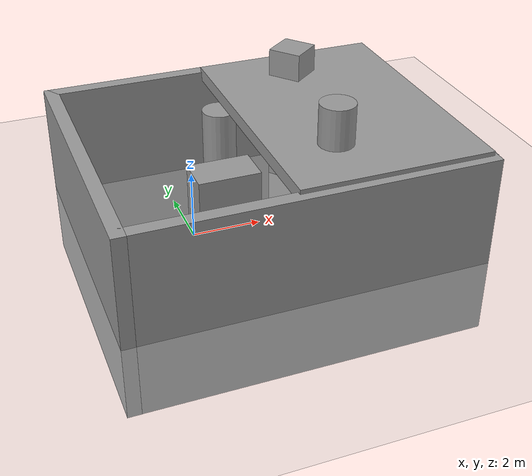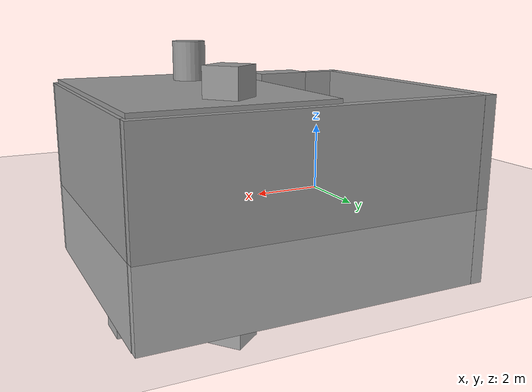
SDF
<sdf version="1.6">
 <world name="default">
  <model name="ground_plane">
   <static>1</static>
   <link name="link">
    <collision name="collision">
     <geometry><plane><normal>0 0 1</normal><size>100 100</size></plane></geometry>
     <surface><friction><ode><mu>100</mu><mu2>50</mu2></ode></friction></surface>
    </collision>
    <visual name="visual">
     <cast_shadows>0</cast_shadows>
     <geometry><plane><normal>0 0 1</normal><size>100 100</size></plane></geometry>
     <material>
      <script><uri>file://media/materials/scripts/gazebo.material</uri><name>Gazebo/Grey</name></script>
     </material>
    </visual>
   </link>
  </model>
  <light name="sun" type="directional">
   <pose>0 0 10 0 -0 0</pose>
   <diffuse>0.8 0.8 0.8 1</diffuse>
   <specular>0.2 0.2 0.2 1</specular>
   <attenuation>
    <range>1000</range>
    <constant>0.9</constant>
    <linear>0.01</linear>
    <quadratic>0.001</quadratic>
   </attenuation>
   <direction>-0.5 0.1 -0.9</direction>
  </light>
  <gravity>0 0 -9.8</gravity>
  <magnetic_field>6e-06 2.3e-05 -4.2e-05</magnetic_field>
  <atmosphere type="adiabatic"/>
  <physics name="default_physics" default="0" type="ode">
   <max_step_size>0.001</max_step_size>
   <real_time_factor>1</real_time_factor>
   <real_time_update_rate>1000</real_time_update_rate>
  </physics>
  <scene><ambient>0.4 0.4 0.4 1</ambient><background>0.7 0.7 0.7 1</background><shadows>1</shadows></scene>
  <spherical_coordinates>
   <surface_model>EARTH_WGS84</surface_model>
   <latitude_deg>0</latitude_deg>
   <longitude_deg>0</longitude_deg>
   <elevation>0</elevation>
   <heading_deg>0</heading_deg>
  </spherical_coordinates>
  <model name="unit_cylinder">
   <static>1</static>
   <pose>1.47402 1.89613 0.5 0 -0 0</pose>
   <link name="link">
    <inertial>
     <mass>1</mass>
     <inertia><ixx>0.145833</ixx><ixy>0</ixy><ixz>0</ixz><iyy>0.145833</iyy><iyz>0</iyz><izz>0.125</izz></inertia>
    </inertial>
    <collision name="collision">
     <geometry><cylinder><radius>0.5</radius><length>4.75179</length></cylinder></geometry>
    </collision>
    <visual name="visual">
     <geometry><cylinder><radius>0.5</radius><length>4.75179</length></cylinder></geometry>
     <material>
      <script><name>Gazebo/Grey</name><uri>file://media/materials/scripts/gazebo.material</uri></script>
     </material>
    </visual>
   </link>
  </model>
  <model name="unit_box">
   <static>1</static>
   <pose>0.143671 -2.42399 0.499995 0 1e-05 0</pose>
   <link name="link">
    <inertial>
     <mass>1</mass>
     <inertia>
      <ixx>0.166667</ixx>
      <ixy>0</ixy>
      <ixz>0</ixz>
      <iyy>0.166667</iyy>
      <iyz>0</iyz>
      <izz>0.166667</izz>
     </inertia>
    </inertial>
    <collision name="collision"><geometry><box><size>1.63839 1 5.89724</size></box></geometry></collision>
    <visual name="visual">
     <geometry><box><size>1.63839 1 5.89724</size></box></geometry>
     <material>
      <script><name>Gazebo/Grey</name><uri>file://media/materials/scripts/gazebo.material</uri></script>
     </material>
    </visual>
   </link>
  </model>
  <model name="unit_cylinder_0">
   <static>1</static>
   <pose>3.401 -2.04277 2.27753 0 0 -6.1e-05</pose>
   <link name="link">
    <inertial>
     <mass>1</mass>
     <inertia><ixx>0.145833</ixx><ixy>0</ixy><ixz>0</ixz><iyy>0.145833</iyy><iyz>0</iyz><izz>0.125</izz></inertia>
    </inertial>
    <collision name="collision">
     <geometry><cylinder><radius>0.5</radius><length>4.55506</length></cylinder></geometry>
    </collision>
    <visual name="visual">
     <geometry><cylinder><radius>0.5</radius><length>4.55506</length></cylinder></geometry>
     <material>
      <script><name>Gazebo/Grey</name><uri>file://media/materials/scripts/gazebo.material</uri></script>
     </material>
    </visual>
   </link>
  </model>
  <model name="unit_box_0">
   <static>1</static>
   <pose>6.32589 0.523966 -0.027983 0 -0 0</pose>
   <link name="link">
    <inertial>
     <mass>1</mass>
     <inertia>
      <ixx>0.166667</ixx>
      <ixy>0</ixy>
      <ixz>0</ixz>
      <iyy>0.166667</iyy>
      <iyz>0</iyz>
      <izz>0.166667</izz>
     </inertia>
    </inertial>
    <collision name="collision"><geometry><box><size>1 1 6.56728</size></box></geometry></collision>
    <visual name="visual">
     <geometry><box><size>1 1 6.56728</size></box></geometry>
     <material>
      <script><name>Gazebo/Grey</name><uri>file://media/materials/scripts/gazebo.material</uri></script>
     </material>
    </visual>
   </link>
  </model>
  <model name="unit_box_1">
   <static>1</static>
   <pose>7 0 0.5 0 -0 0</pose>
   <link name="link">
    <inertial>
     <mass>1</mass>
     <inertia>
      <ixx>0.166667</ixx>
      <ixy>0</ixy>
      <ixz>0</ixz>
      <iyy>0.166667</iyy>
      <iyz>0</iyz>
      <izz>0.166667</izz>
     </inertia>
    </inertial>
    <collision name="collision"><geometry><box><size>0.392525 7.85405 5.49681</size></box></geometry></collision>
    <visual name="visual">
     <geometry><box><size>0.392525 7.85405 5.49681</size></box></geometry>
     <material>
      <script><name>Gazebo/Grey</name><uri>file://media/materials/scripts/gazebo.material</uri></script>
     </material>
    </visual>
   </link>
  </model>
  <model name="unit_box_2">
   <static>1</static>
   <pose>4.04811 2.55905 0.5 0 0 -0.893275</pose>
   <link name="link">
    <inertial>
     <mass>1</mass>
     <inertia>
      <ixx>0.166667</ixx>
      <ixy>0</ixy>
      <ixz>0</ixz>
      <iyy>0.166667</iyy>
      <iyz>0</iyz>
      <izz>0.166667</izz>
     </inertia>
    </inertial>
    <collision name="collision"><geometry><box><size>1 1 7.39301</size></box></geometry></collision>
    <visual name="visual">
     <geometry><box><size>1 1 7.39301</size></box></geometry>
     <material>
      <script><name>Gazebo/Grey</name><uri>file://media/materials/scripts/gazebo.material</uri></script>
     </material>
    </visual>
   </link>
  </model>
  <model name="unit_box_1_clone">
   <static>1</static>
   <pose>-3 0 0.5 0 -0 0</pose>
   <link name="link">
    <inertial>
     <mass>1</mass>
     <inertia>
      <ixx>0.166667</ixx>
      <ixy>0</ixy>
      <ixz>0</ixz>
      <iyy>0.166667</iyy>
      <iyz>0</iyz>
      <izz>0.166667</izz>
     </inertia>
    </inertial>
    <collision name="collision"><geometry><box><size>0.392525 8.40115 5.49682</size></box></geometry></collision>
    <visual name="visual">
     <geometry><box><size>0.392525 8.40115 5.49682</size></box></geometry>
     <material>
      <script><name>Gazebo/Grey</name><uri>file://media/materials/scripts/gazebo.material</uri></script>
     </material>
    </visual>
   </link>
  </model>
  <model name="unit_box_1_clone_clone">
   <static>1</static>
   <pose>2 -4 0.5 0 0 -1.5708</pose>
   <link name="link">
    <inertial>
     <mass>1</mass>
     <inertia>
      <ixx>0.166667</ixx>
      <ixy>0</ixy>
      <ixz>0</ixz>
      <iyy>0.166667</iyy>
      <iyz>0</iyz>
      <izz>0.166667</izz>
     </inertia>
    </inertial>
    <collision name="collision"><geometry><box><size>0.392525 10.3633 5.49682</size></box></geometry></collision>
    <visual name="visual">
     <geometry><box><size>0.392525 10.3633 5.49682</size></box></geometry>
     <material>
      <script><name>Gazebo/Grey</name><uri>file://media/materials/scripts/gazebo.material</uri></script>
     </material>
    </visual>
   </link>
  </model>
  <model name="unit_box_1_clone_clone_clone">
   <static>1</static>
   <pose>2 4 0.5 0 0 -1.5708</pose>
   <link name="link">
    <inertial>
     <mass>1</mass>
     <inertia>
      <ixx>0.166667</ixx>
      <ixy>0</ixy>
      <ixz>0</ixz>
      <iyy>0.166667</iyy>
      <iyz>0</iyz>
      <izz>0.166667</izz>
     </inertia>
    </inertial>
    <collision name="collision"><geometry><box><size>0.392525 10.3633 5.49682</size></box></geometry></collision>
    <visual name="visual">
     <geometry><box><size>0.392525 10.3633 5.49682</size></box></geometry>
     <material>
      <script><name>Gazebo/Grey</name><uri>file://media/materials/scripts/gazebo.material</uri></script>
     </material>
    </visual>
   </link>
  </model>
  <model name="unit_box_1_clone_0">
   <static>1</static>
   <pose>4.32773 -0.002804 3.17776 3.14159 -1.57079 3.14159</pose>
   <link name="link">
    <inertial>
     <mass>1</mass>
     <inertia>
      <ixx>0.166667</ixx>
      <ixy>0</ixy>
      <ixz>0</ixz>
      <iyy>0.166667</iyy>
      <iyz>0</iyz>
      <izz>0.166667</izz>
     </inertia>
    </inertial>
    <collision name="collision"><geometry><box><size>0.392525 7.85405 5.49681</size></box></geometry></collision>
    <visual name="visual">
     <geometry><box><size>0.392525 7.85405 5.49681</size></box></geometry>
     <material>
      <script><name>Gazebo/Grey</name><uri>file://media/materials/scripts/gazebo.material</uri></script>
     </material>
    </visual>
   </link>
  </model>
 </world>
</sdf>
